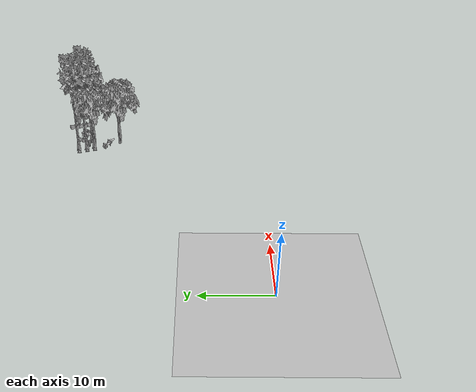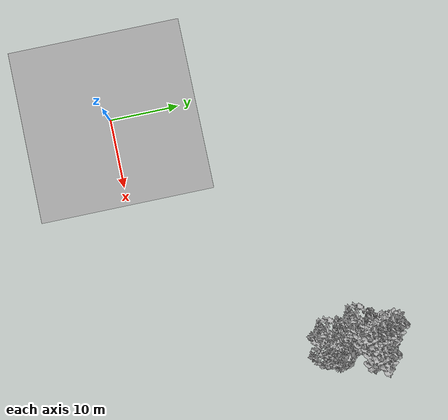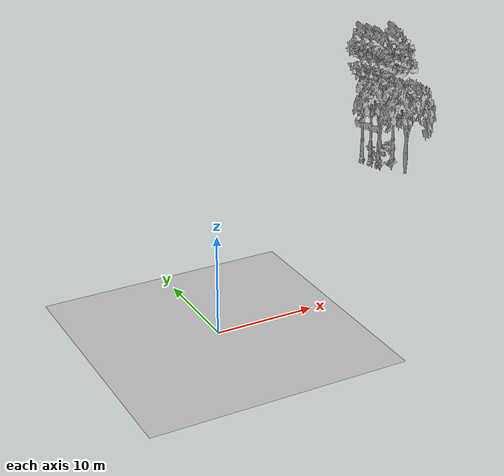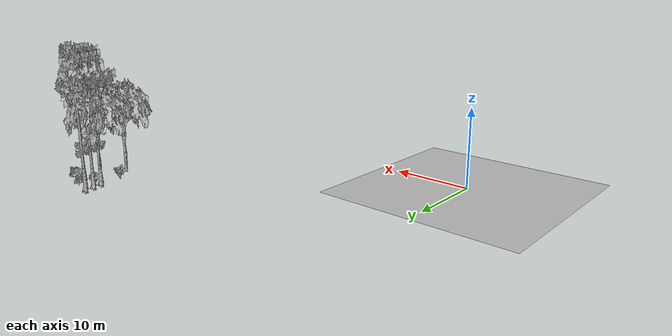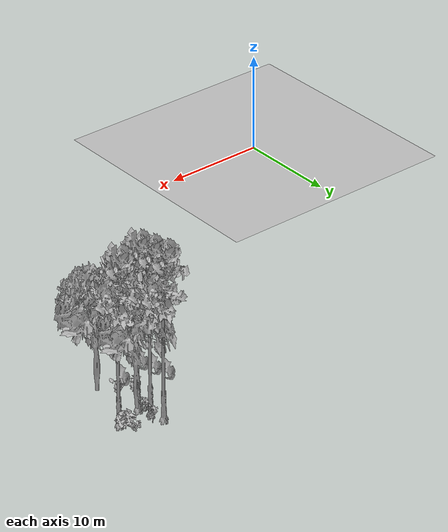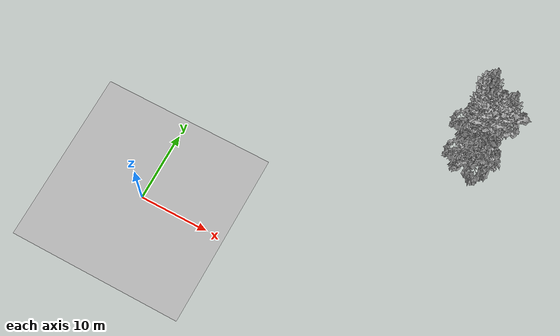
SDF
<sdf version="1.7">
 <world name="default">
  <model name="ground_plane">
   <static>1</static>
   <link name="link">
    <collision name="collision">
     <pose>-50 0 0 0 -0 0</pose>
     <geometry><plane><normal>0 0 1</normal><size>80 80</size></plane></geometry>
     <surface><contact><ode><min_depth>0.01</min_depth><max_vel>0</max_vel></ode></contact></surface>
    </collision>
    <visual name="grass">
     <cast_shadows>0</cast_shadows>
     <geometry>
      <mesh>
       <scale>0.46714285714285714 0.46714285714285714 0.1</scale>
       <uri>file://grass_plane/meshes/grass_plane.dae</uri>
      </mesh>
     </geometry>
    </visual>
   </link>
  </model>
  <model name="Tree 29">
   <static>1</static>
   <pose>36.84406272811566 23.460842420579823 0 1.57079 -0 0</pose>
   <link name="link">
    <collision name="collision">
     <geometry><mesh><scale>3.5 5 3.5</scale><uri>model://tree_2/meshes/tree_2.obj</uri></mesh></geometry>
    </collision>
    <visual name="visual">
     <geometry><mesh><scale>3.5 5 3.5</scale><uri>model://tree_2/meshes/tree_2.obj</uri></mesh></geometry>
    </visual>
   </link>
  </model>
  <model name="Tree 126">
   <static>1</static>
   <pose>35.812495147454385 27.728864602606876 0 1.57079 -0 0</pose>
   <link name="link">
    <collision name="collision">
     <geometry><mesh><scale>3.5 5 3.5</scale><uri>model://tree_9/meshes/tree_9.obj</uri></mesh></geometry>
    </collision>
    <visual name="visual">
     <geometry><mesh><scale>3.5 5 3.5</scale><uri>model://tree_9/meshes/tree_9.obj</uri></mesh></geometry>
    </visual>
   </link>
  </model>
  <model name="Tree 275">
   <static>1</static>
   <pose>35.44019088401352 28.95017297706478 0 1.57079 -0 0</pose>
   <link name="link">
    <collision name="collision">
     <geometry><mesh><scale>3.5 5 3.5</scale><uri>model://tree_9/meshes/tree_9.obj</uri></mesh></geometry>
    </collision>
    <visual name="visual">
     <geometry><mesh><scale>3.5 5 3.5</scale><uri>model://tree_9/meshes/tree_9.obj</uri></mesh></geometry>
    </visual>
   </link>
  </model>
  <model name="Tree 385">
   <static>1</static>
   <pose>35.84393060525623 27.67833607733455 0 1.57079 -0 0</pose>
   <link name="link">
    <collision name="collision">
     <geometry><mesh><scale>3.5 5 3.5</scale><uri>model://tree_2/meshes/tree_2.obj</uri></mesh></geometry>
    </collision>
    <visual name="visual">
     <geometry><mesh><scale>3.5 5 3.5</scale><uri>model://tree_2/meshes/tree_2.obj</uri></mesh></geometry>
    </visual>
   </link>
  </model>
  <model name="Tree 498">
   <static>1</static>
   <pose>38.43304935386067 28.513997781284473 0 1.57079 -0 0</pose>
   <link name="link">
    <collision name="collision">
     <geometry><mesh><scale>3.5 5 3.5</scale><uri>model://tree_9/meshes/tree_9.obj</uri></mesh></geometry>
    </collision>
    <visual name="visual">
     <geometry><mesh><scale>3.5 5 3.5</scale><uri>model://tree_9/meshes/tree_9.obj</uri></mesh></geometry>
    </visual>
   </link>
  </model>
  <model name="Tree 597">
   <static>1</static>
   <pose>35.033089502888714 30.223278115176825 0 1.57079 -0 0</pose>
   <link name="link">
    <collision name="collision">
     <geometry><mesh><scale>3.5 5 3.5</scale><uri>model://tree_9/meshes/tree_9.obj</uri></mesh></geometry>
    </collision>
    <visual name="visual">
     <geometry><mesh><scale>3.5 5 3.5</scale><uri>model://tree_9/meshes/tree_9.obj</uri></mesh></geometry>
    </visual>
   </link>
  </model>
  <model name="Bush 30">
   <static>1</static>
   <pose>37.687975091528415 29.688142613159343 0 1.57079 -0 0</pose>
   <link name="link">
    <collision name="collision">
     <geometry><mesh><scale>2 2 2</scale><uri>model://bush_2/meshes/bush_2.obj</uri></mesh></geometry>
     <surface><contact><collide_without_contact>false</collide_without_contact></contact></surface>
    </collision>
    <visual name="visual">
     <geometry><mesh><scale>2 2 2</scale><uri>model://bush_2/meshes/bush_2.obj</uri></mesh></geometry>
    </visual>
   </link>
  </model>
  <model name="Bush 190">
   <static>1</static>
   <pose>36.01593781582535 25.089506387707075 0 1.57079 -0 0</pose>
   <link name="link">
    <collision name="collision">
     <geometry><mesh><scale>2 2 2</scale><uri>model://bush_0/meshes/bush_0.obj</uri></mesh></geometry>
     <surface><contact><collide_without_contact>false</collide_without_contact></contact></surface>
    </collision>
    <visual name="visual">
     <geometry><mesh><scale>2 2 2</scale><uri>model://bush_0/meshes/bush_0.obj</uri></mesh></geometry>
    </visual>
   </link>
  </model>
  <model name="Bush 193">
   <static>1</static>
   <pose>35.766666809131465 28.57079906262635 0 1.57079 -0 0</pose>
   <link name="link">
    <collision name="collision">
     <geometry><mesh><scale>2 2 2</scale><uri>model://bush_4/meshes/bush_4.obj</uri></mesh></geometry>
     <surface><contact><collide_without_contact>false</collide_without_contact></contact></surface>
    </collision>
    <visual name="visual">
     <geometry><mesh><scale>2 2 2</scale><uri>model://bush_4/meshes/bush_4.obj</uri></mesh></geometry>
    </visual>
   </link>
  </model>
  <model name="Bush 294">
   <static>1</static>
   <pose>34.7768126838243 25.65904565878246 0 1.57079 -0 0</pose>
   <link name="link">
    <collision name="collision">
     <geometry><mesh><scale>2 2 2</scale><uri>model://bush_0/meshes/bush_0.obj</uri></mesh></geometry>
     <surface><contact><collide_without_contact>false</collide_without_contact></contact></surface>
    </collision>
    <visual name="visual">
     <geometry><mesh><scale>2 2 2</scale><uri>model://bush_0/meshes/bush_0.obj</uri></mesh></geometry>
    </visual>
   </link>
  </model>
  <model name="Bush 307">
   <static>1</static>
   <pose>36.3210326046424 30.336544952563855 0 1.57079 -0 0</pose>
   <link name="link">
    <collision name="collision">
     <geometry><mesh><scale>2 2 2</scale><uri>model://bush_5/meshes/bush_5.obj</uri></mesh></geometry>
     <surface><contact><collide_without_contact>false</collide_without_contact></contact></surface>
    </collision>
    <visual name="visual">
     <geometry><mesh><scale>2 2 2</scale><uri>model://bush_5/meshes/bush_5.obj</uri></mesh></geometry>
    </visual>
   </link>
  </model>
  <model name="Bush 498">
   <static>1</static>
   <pose>38.547724738180534 29.307873325017937 0 1.57079 -0 0</pose>
   <link name="link">
    <collision name="collision">
     <geometry><mesh><scale>2 2 2</scale><uri>model://bush_1/meshes/bush_1.obj</uri></mesh></geometry>
     <surface><contact><collide_without_contact>false</collide_without_contact></contact></surface>
    </collision>
    <visual name="visual">
     <geometry><mesh><scale>2 2 2</scale><uri>model://bush_1/meshes/bush_1.obj</uri></mesh></geometry>
    </visual>
   </link>
  </model>
 </world>
</sdf>
